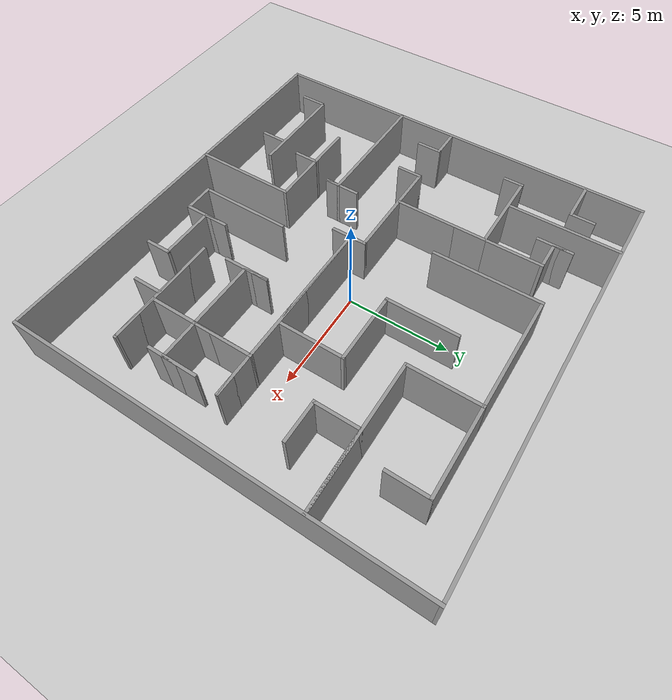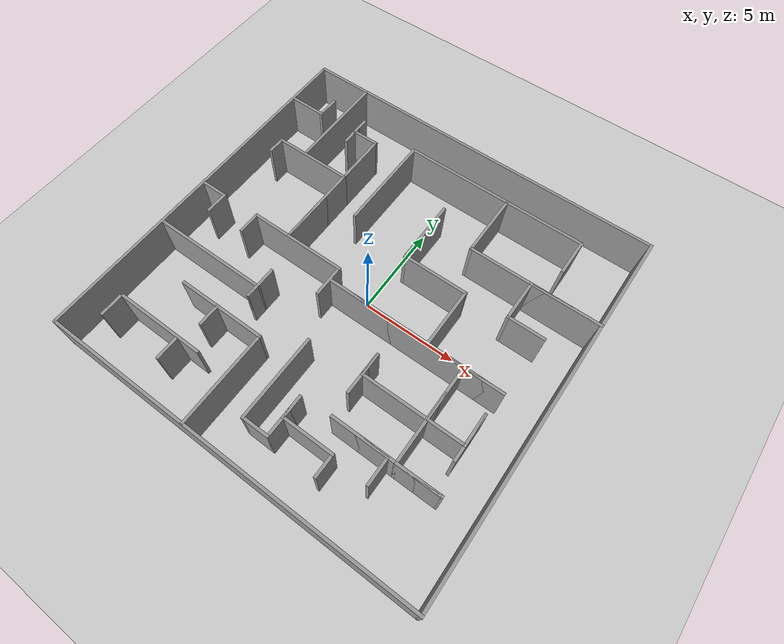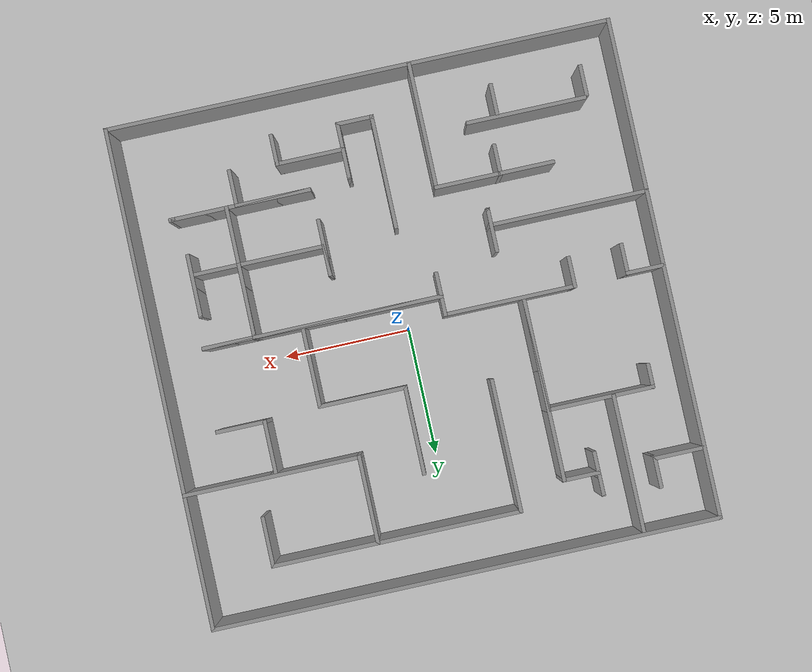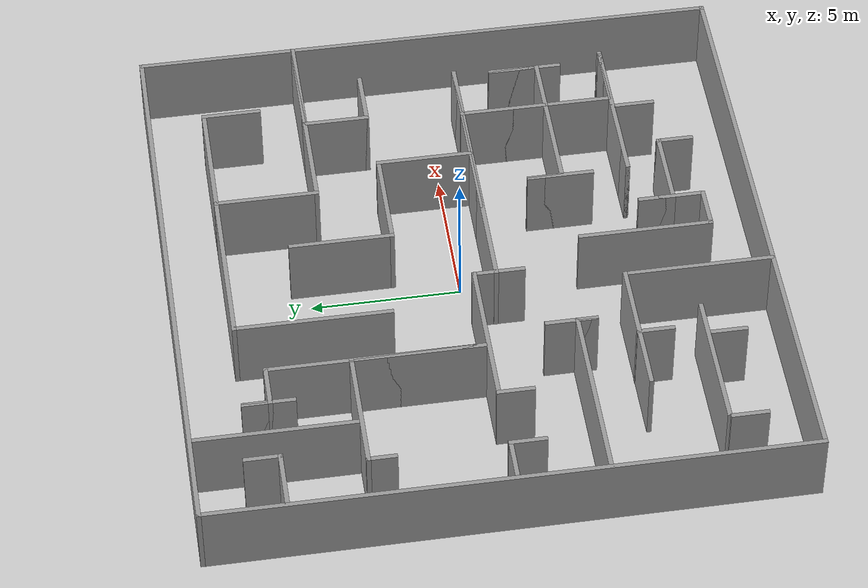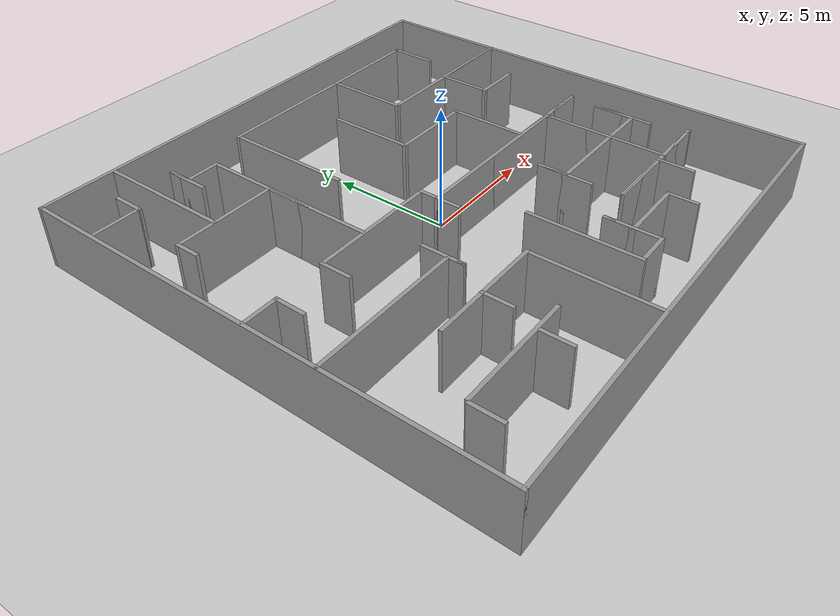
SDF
<sdf version="1.7">
 <world name="default">
  <light name="sun" type="directional">
   <pose>0 0 10 0 -0 0</pose>
   <diffuse>0.8 0.8 0.8 1</diffuse>
   <specular>0.2 0.2 0.2 1</specular>
   <attenuation>
    <range>1000</range>
    <constant>0.9</constant>
    <linear>0.01</linear>
    <quadratic>0.001</quadratic>
   </attenuation>
   <direction>-0.5 0.1 -0.9</direction>
   <spot><inner_angle>0</inner_angle><outer_angle>0</outer_angle><falloff>0</falloff></spot>
  </light>
  <model name="ground_plane">
   <static>1</static>
   <link name="link">
    <collision name="collision">
     <geometry><plane><normal>0 0 1</normal><size>100 100</size></plane></geometry>
     <surface>
      <contact><collide_bitmask>65535</collide_bitmask></contact>
      <friction><ode><mu>100</mu><mu2>50</mu2></ode></friction>
     </surface>
    </collision>
    <visual name="visual">
     <cast_shadows>0</cast_shadows>
     <geometry><plane><normal>0 0 1</normal><size>100 100</size></plane></geometry>
     <material>
      <script><uri>file://media/materials/scripts/gazebo.material</uri><name>Gazebo/Grey</name></script>
     </material>
    </visual>
   </link>
  </model>
  <gravity>0 0 -9.8</gravity>
  <magnetic_field>6e-06 2.3e-05 -4.2e-05</magnetic_field>
  <atmosphere type="adiabatic"/>
  <physics type="ode">
   <max_step_size>0.001</max_step_size>
   <real_time_factor>1</real_time_factor>
   <real_time_update_rate>1000</real_time_update_rate>
  </physics>
  <scene><ambient>0.4 0.4 0.4 1</ambient><background>0.7 0.7 0.7 1</background><shadows>1</shadows></scene>
  <spherical_coordinates>
   <surface_model>EARTH_WGS84</surface_model>
   <latitude_deg>0</latitude_deg>
   <longitude_deg>0</longitude_deg>
   <elevation>0</elevation>
   <heading_deg>0</heading_deg>
  </spherical_coordinates>
  <model name="maze_wei_20240820">
   <pose>-0.167936 -0.192088 0 0 -0 0</pose>
   <link name="Wall_12">
    <collision name="Wall_12_Collision">
     <geometry><box><size>1.25 0.15 2.5</size></box></geometry>
     <pose>0 0.1 1.25 0 -0 0</pose>
    </collision>
    <visual name="Wall_12_Visual">
     <pose>0 0.1 1.25 0 -0 0</pose>
     <geometry><box><size>1.25 0.15 2.5</size></box></geometry>
     <material>
      <script><uri>file://media/materials/scripts/gazebo.material</uri><name>Gazebo/Grey</name></script>
      <ambient>1 1 1 1</ambient>
     </material>
     <meta><layer>0</layer></meta>
    </visual>
    <pose>-8.37841 -7.71905 0 0 -0 1.5708</pose>
   </link>
   <link name="Wall_13">
    <collision name="Wall_13_Collision">
     <geometry><box><size>4.75 0.15 2.5</size></box></geometry>
     <pose>0 0.1 1.25 0 -0 0</pose>
    </collision>
    <visual name="Wall_13_Visual">
     <pose>0 0.1 1.25 0 -0 0</pose>
     <geometry><box><size>4.75 0.15 2.5</size></box></geometry>
     <material>
      <script><uri>file://media/materials/scripts/gazebo.material</uri><name>Gazebo/Grey</name></script>
      <ambient>1 1 1 1</ambient>
     </material>
     <meta><layer>0</layer></meta>
    </visual>
    <pose>-6.07841 -7.16905 0 0 -0 0</pose>
   </link>
   <link name="Wall_15">
    <collision name="Wall_15_Collision">
     <geometry><box><size>1.25 0.15 2.5</size></box></geometry>
     <pose>0 0.1 1.25 0 -0 0</pose>
    </collision>
    <visual name="Wall_15_Visual">
     <pose>0 0.1 1.25 0 -0 0</pose>
     <geometry><box><size>1.25 0.15 2.5</size></box></geometry>
     <material>
      <script><uri>file://media/materials/scripts/gazebo.material</uri><name>Gazebo/Grey</name></script>
      <ambient>1 1 1 1</ambient>
     </material>
     <meta><layer>0</layer></meta>
    </visual>
    <pose>-5.04841 -7.74905 0 0 -0 -1.5708</pose>
   </link>
   <link name="Wall_17">
    <collision name="Wall_17_Collision">
     <geometry><box><size>5 0.15 2.5</size></box></geometry>
     <pose>0 0 1.25 0 -0 0</pose>
    </collision>
    <visual name="Wall_17_Visual">
     <pose>0 0 1.25 0 -0 0</pose>
     <geometry><box><size>5 0.15 2.5</size></box></geometry>
     <material>
      <script><uri>file://media/materials/scripts/gazebo.material</uri><name>Gazebo/Grey</name></script>
      <ambient>1 1 1 1</ambient>
     </material>
     <meta><layer>0</layer></meta>
    </visual>
    <pose>-2.04333 -7.33547 0 0 -0 1.5708</pose>
   </link>
   <link name="Wall_18">
    <collision name="Wall_18_Collision">
     <geometry><box><size>4.75 0.15 2.5</size></box></geometry>
     <pose>0 0 1.25 0 -0 0</pose>
    </collision>
    <visual name="Wall_18_Visual">
     <pose>0 0 1.25 0 -0 0</pose>
     <geometry><box><size>4.75 0.15 2.5</size></box></geometry>
     <material>
      <script><uri>file://media/materials/scripts/gazebo.material</uri><name>Gazebo/Grey</name></script>
      <ambient>1 1 1 1</ambient>
     </material>
     <meta><layer>0</layer></meta>
    </visual>
    <pose>-4.34333 -4.90047 0 0 -0 3.14159</pose>
   </link>
   <link name="Wall_2">
    <collision name="Wall_2_Collision">
     <geometry><box><size>20 0.15 2.5</size></box></geometry>
     <pose>0 0 1.25 0 -0 0</pose>
    </collision>
    <visual name="Wall_2_Visual">
     <pose>0 0 1.25 0 -0 0</pose>
     <geometry><box><size>20 0.15 2.5</size></box></geometry>
     <material>
      <script><uri>file://media/materials/scripts/gazebo.material</uri><name>Gazebo/Grey</name></script>
      <ambient>1 1 1 1</ambient>
     </material>
     <meta><layer>0</layer></meta>
    </visual>
    <pose>0 -9.8 0 0 -0 0</pose>
   </link>
   <link name="Wall_20">
    <collision name="Wall_20_Collision">
     <geometry><box><size>1.25 0.15 2.5</size></box></geometry>
     <pose>0 0 1.25 0 -0 0</pose>
    </collision>
    <visual name="Wall_20_Visual">
     <pose>0 0 1.25 0 -0 0</pose>
     <geometry><box><size>1.25 0.15 2.5</size></box></geometry>
     <material>
      <script><uri>file://media/materials/scripts/gazebo.material</uri><name>Gazebo/Grey</name></script>
      <ambient>1 1 1 1</ambient>
     </material>
     <meta><layer>0</layer></meta>
    </visual>
    <pose>-4.57333 -5.44047 0 0 -0 -1.5708</pose>
   </link>
   <link name="Wall_22">
    <collision name="Wall_22_Collision">
     <geometry><box><size>6.25 0.15 2.5</size></box></geometry>
     <pose>0 0 1.25 0 -0 0</pose>
    </collision>
    <visual name="Wall_22_Visual">
     <pose>0 0 1.25 0 -0 0</pose>
     <geometry><box><size>6.25 0.15 2.5</size></box></geometry>
     <material>
      <script><uri>file://media/materials/scripts/gazebo.material</uri><name>Gazebo/Grey</name></script>
      <ambient>1 1 1 1</ambient>
     </material>
     <meta><layer>0</layer></meta>
    </visual>
    <pose>-6.84505 -3.03153 0 0 -0 0</pose>
   </link>
   <link name="Wall_23">
    <collision name="Wall_23_Collision">
     <geometry><box><size>0.75 0.15 2.5</size></box></geometry>
     <pose>0 0 1.25 0 -0 0</pose>
    </collision>
    <visual name="Wall_23_Visual">
     <pose>0 0 1.25 0 -0 0</pose>
     <geometry><box><size>0.75 0.15 2.5</size></box></geometry>
     <material>
      <script><uri>file://media/materials/scripts/gazebo.material</uri><name>Gazebo/Grey</name></script>
      <ambient>1 1 1 1</ambient>
     </material>
     <meta><layer>0</layer></meta>
    </visual>
    <pose>-3.79505 -3.33153 0 0 -0 -1.5708</pose>
   </link>
   <link name="Wall_24">
    <collision name="Wall_24_Collision">
     <geometry><box><size>1.75 0.15 2.5</size></box></geometry>
     <pose>0 0 1.25 0 -0 0</pose>
    </collision>
    <visual name="Wall_24_Visual">
     <pose>0 0 1.25 0 -0 0</pose>
     <geometry><box><size>1.75 0.15 2.5</size></box></geometry>
     <material>
      <script><uri>file://media/materials/scripts/gazebo.material</uri><name>Gazebo/Grey</name></script>
      <ambient>1 1 1 1</ambient>
     </material>
     <meta><layer>0</layer></meta>
    </visual>
    <pose>-3.79505 -2.83153 0 0 -0 1.5708</pose>
   </link>
   <link name="Wall_26">
    <collision name="Wall_26_Collision">
     <geometry><box><size>1.5 0.15 2.5</size></box></geometry>
     <pose>0 0 1.25 0 -0 0</pose>
    </collision>
    <visual name="Wall_26_Visual">
     <pose>0 0 1.25 0 -0 0</pose>
     <geometry><box><size>1.5 0.15 2.5</size></box></geometry>
     <material>
      <script><uri>file://media/materials/scripts/gazebo.material</uri><name>Gazebo/Grey</name></script>
      <ambient>1 1 1 1</ambient>
     </material>
     <meta><layer>0</layer></meta>
    </visual>
    <pose>-9.18964 -0.09624 0 0 -0 0</pose>
   </link>
   <link name="Wall_27">
    <collision name="Wall_27_Collision">
     <geometry><box><size>1.25 0.15 2.5</size></box></geometry>
     <pose>0 0 1.25 0 -0 0</pose>
    </collision>
    <visual name="Wall_27_Visual">
     <pose>0 0 1.25 0 -0 0</pose>
     <geometry><box><size>1.25 0.15 2.5</size></box></geometry>
     <material>
      <script><uri>file://media/materials/scripts/gazebo.material</uri><name>Gazebo/Grey</name></script>
      <ambient>1 1 1 1</ambient>
     </material>
     <meta><layer>0</layer></meta>
    </visual>
    <pose>-8.51464 -0.64624 0 0 -0 -1.5708</pose>
   </link>
   <link name="Wall_29">
    <collision name="Wall_29_Collision">
     <geometry><box><size>1.25 0.15 2.5</size></box></geometry>
     <pose>0 0 1.25 0 -0 0</pose>
    </collision>
    <visual name="Wall_29_Visual">
     <pose>0 0 1.25 0 -0 0</pose>
     <geometry><box><size>1.25 0.15 2.5</size></box></geometry>
     <material>
      <script><uri>file://media/materials/scripts/gazebo.material</uri><name>Gazebo/Grey</name></script>
      <ambient>1 1 1 1</ambient>
     </material>
     <meta><layer>0</layer></meta>
    </visual>
    <pose>-6.42746 -0.595643 0 0 -0 1.5708</pose>
   </link>
   <link name="Wall_3">
    <collision name="Wall_3_Collision">
     <geometry><box><size>19.75 0.15 2.5</size></box></geometry>
     <pose>0 0 1.25 0 -0 0</pose>
    </collision>
    <visual name="Wall_3_Visual">
     <pose>0 0 1.25 0 -0 0</pose>
     <geometry><box><size>19.75 0.15 2.5</size></box></geometry>
     <material>
      <script><uri>file://media/materials/scripts/gazebo.material</uri><name>Gazebo/Grey</name></script>
      <ambient>1 1 1 1</ambient>
     </material>
     <meta><layer>0</layer></meta>
    </visual>
    <pose>9.925 0 0 0 -0 1.5708</pose>
   </link>
   <link name="Wall_30">
    <collision name="Wall_30_Collision">
     <geometry><box><size>5.25 0.15 2.5</size></box></geometry>
     <pose>0 0 1.25 0 -0 0</pose>
    </collision>
    <visual name="Wall_30_Visual">
     <pose>0 0 1.25 0 -0 0</pose>
     <geometry><box><size>5.25 0.15 2.5</size></box></geometry>
     <material>
      <script><uri>file://media/materials/scripts/gazebo.material</uri><name>Gazebo/Grey</name></script>
      <ambient>1 1 1 1</ambient>
     </material>
     <meta><layer>0</layer></meta>
    </visual>
    <pose>-3.87746 -0.045643 0 0 -0 0</pose>
   </link>
   <link name="Wall_31">
    <collision name="Wall_31_Collision">
     <geometry><box><size>1.75 0.15 2.5</size></box></geometry>
     <pose>0 0 1.25 0 -0 0</pose>
    </collision>
    <visual name="Wall_31_Visual">
     <pose>0 0 1.25 0 -0 0</pose>
     <geometry><box><size>1.75 0.15 2.5</size></box></geometry>
     <material>
      <script><uri>file://media/materials/scripts/gazebo.material</uri><name>Gazebo/Grey</name></script>
      <ambient>1 1 1 1</ambient>
     </material>
     <meta><layer>0</layer></meta>
    </visual>
    <pose>-1.32746 -0.845643 0 0 -0 -1.5708</pose>
   </link>
   <link name="Wall_34">
    <collision name="Wall_34_Collision">
     <geometry><box><size>4.5 0.15 2.5</size></box></geometry>
     <pose>0 0 1.25 0 -0 0</pose>
    </collision>
    <visual name="Wall_34_Visual">
     <pose>0 0 1.25 0 -0 0</pose>
     <geometry><box><size>4.5 0.15 2.5</size></box></geometry>
     <material>
      <script><uri>file://media/materials/scripts/gazebo.material</uri><name>Gazebo/Grey</name></script>
      <ambient>1 1 1 1</ambient>
     </material>
     <meta><layer>0</layer></meta>
    </visual>
    <pose>-0.198634 -5.9289 0 0 -0 -1.5708</pose>
   </link>
   <link name="Wall_35">
    <collision name="Wall_35_Collision">
     <geometry><box><size>1.5 0.15 2.5</size></box></geometry>
     <pose>0 0 1.25 0 -0 0</pose>
    </collision>
    <visual name="Wall_35_Visual">
     <pose>0 0 1.25 0 -0 0</pose>
     <geometry><box><size>1.5 0.15 2.5</size></box></geometry>
     <material>
      <script><uri>file://media/materials/scripts/gazebo.material</uri><name>Gazebo/Grey</name></script>
      <ambient>1 1 1 1</ambient>
     </material>
     <meta><layer>0</layer></meta>
    </visual>
    <pose>0.476366 -8.1039 0 0 -0 0</pose>
   </link>
   <link name="Wall_36">
    <collision name="Wall_36_Collision">
     <geometry><box><size>2.25 0.15 2.5</size></box></geometry>
     <pose>0 0 1.25 0 -0 0</pose>
    </collision>
    <visual name="Wall_36_Visual">
     <pose>0 0 1.25 0 -0 0</pose>
     <geometry><box><size>2.25 0.15 2.5</size></box></geometry>
     <material>
      <script><uri>file://media/materials/scripts/gazebo.material</uri><name>Gazebo/Grey</name></script>
      <ambient>1 1 1 1</ambient>
     </material>
     <meta><layer>0</layer></meta>
    </visual>
    <pose>1.15137 -7.0539 0 0 -0 1.5708</pose>
   </link>
   <link name="Wall_37">
    <collision name="Wall_37_Collision">
     <geometry><box><size>1.25 0.15 2.5</size></box></geometry>
     <pose>0 0 1.25 0 -0 0</pose>
    </collision>
    <visual name="Wall_37_Visual">
     <pose>0 0 1.25 0 -0 0</pose>
     <geometry><box><size>1.25 0.15 2.5</size></box></geometry>
     <material>
      <script><uri>file://media/materials/scripts/gazebo.material</uri><name>Gazebo/Grey</name></script>
      <ambient>1 1 1 1</ambient>
     </material>
     <meta><layer>0</layer></meta>
    </visual>
    <pose>1.15137 -6.5539 0 0 -0 -1.5708</pose>
   </link>
   <link name="Wall_38">
    <collision name="Wall_38_Collision">
     <geometry><box><size>2.75 0.15 2.5</size></box></geometry>
     <pose>0 0 1.25 0 -0 0</pose>
    </collision>
    <visual name="Wall_38_Visual">
     <pose>0 0 1.25 0 -0 0</pose>
     <geometry><box><size>2.75 0.15 2.5</size></box></geometry>
     <material>
      <script><uri>file://media/materials/scripts/gazebo.material</uri><name>Gazebo/Grey</name></script>
      <ambient>1 1 1 1</ambient>
     </material>
     <meta><layer>0</layer></meta>
    </visual>
    <pose>2.45137 -7.1039 0 0 -0 0</pose>
   </link>
   <link name="Wall_39">
    <collision name="Wall_39_Collision">
     <geometry><box><size>1.25 0.15 2.5</size></box></geometry>
     <pose>0 0 1.25 0 -0 0</pose>
    </collision>
    <visual name="Wall_39_Visual">
     <pose>0 0 1.25 0 -0 0</pose>
     <geometry><box><size>1.25 0.15 2.5</size></box></geometry>
     <material>
      <script><uri>file://media/materials/scripts/gazebo.material</uri><name>Gazebo/Grey</name></script>
      <ambient>1 1 1 1</ambient>
     </material>
     <meta><layer>0</layer></meta>
    </visual>
    <pose>3.75137 -7.6539 0 0 -0 -1.5708</pose>
   </link>
   <link name="Wall_4">
    <collision name="Wall_4_Collision">
     <geometry><box><size>20 0.15 2.5</size></box></geometry>
     <pose>0 0 1.25 0 -0 0</pose>
    </collision>
    <visual name="Wall_4_Visual">
     <pose>0 0 1.25 0 -0 0</pose>
     <geometry><box><size>20 0.15 2.5</size></box></geometry>
     <material>
      <script><uri>file://media/materials/scripts/gazebo.material</uri><name>Gazebo/Grey</name></script>
      <ambient>1 1 1 1</ambient>
     </material>
     <meta><layer>0</layer></meta>
    </visual>
    <pose>0 9.8 0 0 -0 3.14159</pose>
   </link>
   <link name="Wall_42">
    <collision name="Wall_42_Collision">
     <geometry><box><size>1.5 0.15 2.5</size></box></geometry>
     <pose>0 0 1.25 0 -0 0</pose>
    </collision>
    <visual name="Wall_42_Visual">
     <pose>0 0 1.25 0 -0 0</pose>
     <geometry><box><size>1.5 0.15 2.5</size></box></geometry>
     <material>
      <script><uri>file://media/materials/scripts/gazebo.material</uri><name>Gazebo/Grey</name></script>
      <ambient>1 1 1 1</ambient>
     </material>
     <meta><layer>0</layer></meta>
    </visual>
    <pose>5.61419 -6.53843 0 0 -0 1.5708</pose>
   </link>
   <link name="Wall_43">
    <collision name="Wall_43_Collision">
     <geometry><box><size>3 0.15 2.5</size></box></geometry>
     <pose>0 0 1.25 0 -0 0</pose>
    </collision>
    <visual name="Wall_43_Visual">
     <pose>0 0 1.25 0 -0 0</pose>
     <geometry><box><size>3 0.15 2.5</size></box></geometry>
     <material>
      <script><uri>file://media/materials/scripts/gazebo.material</uri><name>Gazebo/Grey</name></script>
      <ambient>1 1 1 1</ambient>
     </material>
     <meta><layer>0</layer></meta>
    </visual>
    <pose>4.18919 -5.86343 0 0 -0 3.14159</pose>
   </link>
   <link name="Wall_44">
    <collision name="Wall_44_Collision">
     <geometry><box><size>5.5 0.15 2.5</size></box></geometry>
     <pose>0 0 1.25 0 -0 0</pose>
    </collision>
    <visual name="Wall_44_Visual">
     <pose>0 0 1.25 0 -0 0</pose>
     <geometry><box><size>5.5 0.15 2.5</size></box></geometry>
     <material>
      <script><uri>file://media/materials/scripts/gazebo.material</uri><name>Gazebo/Grey</name></script>
      <ambient>1 1 1 1</ambient>
     </material>
     <meta><layer>0</layer></meta>
    </visual>
    <pose>5.43919 -5.86343 0 0 -0 0</pose>
   </link>
   <link name="Wall_45">
    <collision name="Wall_45_Collision">
     <geometry><box><size>2.25 0.15 2.5</size></box></geometry>
     <pose>0 0 1.25 0 -0 0</pose>
    </collision>
    <visual name="Wall_45_Visual">
     <pose>0 0 1.25 0 -0 0</pose>
     <geometry><box><size>2.25 0.15 2.5</size></box></geometry>
     <material>
      <script><uri>file://media/materials/scripts/gazebo.material</uri><name>Gazebo/Grey</name></script>
      <ambient>1 1 1 1</ambient>
     </material>
     <meta><layer>0</layer></meta>
    </visual>
    <pose>7.06419 -5.86343 0 0 -0 3.14159</pose>
   </link>
   <link name="Wall_46">
    <collision name="Wall_46_Collision">
     <geometry><box><size>5.25 0.15 2.5</size></box></geometry>
     <pose>0 0 1.25 0 -0 0</pose>
    </collision>
    <visual name="Wall_46_Visual">
     <pose>0 0 1.25 0 -0 0</pose>
     <geometry><box><size>5.25 0.15 2.5</size></box></geometry>
     <material>
      <script><uri>file://media/materials/scripts/gazebo.material</uri><name>Gazebo/Grey</name></script>
      <ambient>1 1 1 1</ambient>
     </material>
     <meta><layer>0</layer></meta>
    </visual>
    <pose>6.01419 -3.31343 0 0 -0 1.5708</pose>
   </link>
   <link name="Wall_47">
    <collision name="Wall_47_Collision">
     <geometry><box><size>7.5 0.15 2.5</size></box></geometry>
     <pose>0 0 1.25 0 -0 0</pose>
    </collision>
    <visual name="Wall_47_Visual">
     <pose>0 0 1.25 0 -0 0</pose>
     <geometry><box><size>7.5 0.15 2.5</size></box></geometry>
     <material>
      <script><uri>file://media/materials/scripts/gazebo.material</uri><name>Gazebo/Grey</name></script>
      <ambient>1 1 1 1</ambient>
     </material>
     <meta><layer>0</layer></meta>
    </visual>
    <pose>2.33919 -0.763433 0 0 -0 3.14159</pose>
   </link>
   <link name="Wall_48">
    <collision name="Wall_48_Collision">
     <geometry><box><size>9.5 0.15 2.5</size></box></geometry>
     <pose>0 0 1.25 0 -0 0</pose>
    </collision>
    <visual name="Wall_48_Visual">
     <pose>0 0 1.25 0 -0 0</pose>
     <geometry><box><size>9.5 0.15 2.5</size></box></geometry>
     <material>
      <script><uri>file://media/materials/scripts/gazebo.material</uri><name>Gazebo/Grey</name></script>
      <ambient>1 1 1 1</ambient>
     </material>
     <meta><layer>0</layer></meta>
    </visual>
    <pose>3.33919 -0.763433 0 0 -0 0</pose>
   </link>
   <link name="Wall_49">
    <collision name="Wall_49_Collision">
     <geometry><box><size>2.15 0.15 2.5</size></box></geometry>
     <pose>0 0 1.25 0 -0 0</pose>
    </collision>
    <visual name="Wall_49_Visual">
     <pose>0 0 1.25 0 -0 0</pose>
     <geometry><box><size>2.15 0.15 2.5</size></box></geometry>
     <material>
      <script><uri>file://media/materials/scripts/gazebo.material</uri><name>Gazebo/Grey</name></script>
      <ambient>1 1 1 1</ambient>
     </material>
     <meta><layer>0</layer></meta>
    </visual>
    <pose>7.01419 -0.763433 0 0 -0 -3.14159</pose>
   </link>
   <link name="Wall_5">
    <collision name="Wall_5_Collision">
     <geometry><box><size>19.75 0.15 2.5</size></box></geometry>
     <pose>0 0 1.25 0 -0 0</pose>
    </collision>
    <visual name="Wall_5_Visual">
     <pose>0 0 1.25 0 -0 0</pose>
     <geometry><box><size>19.75 0.15 2.5</size></box></geometry>
     <material>
      <script><uri>file://media/materials/scripts/gazebo.material</uri><name>Gazebo/Grey</name></script>
      <ambient>1 1 1 1</ambient>
     </material>
     <meta><layer>0</layer></meta>
    </visual>
    <pose>-9.925 0 0 0 -0 -1.5708</pose>
   </link>
   <link name="Wall_50">
    <collision name="Wall_50_Collision">
     <geometry><box><size>3 0.15 2.5</size></box></geometry>
     <pose>0 0 1.25 0 -0 0</pose>
    </collision>
    <visual name="Wall_50_Visual">
     <pose>0 0 1.25 0 -0 0</pose>
     <geometry><box><size>3 0.15 2.5</size></box></geometry>
     <material>
      <script><uri>file://media/materials/scripts/gazebo.material</uri><name>Gazebo/Grey</name></script>
      <ambient>1 1 1 1</ambient>
     </material>
     <meta><layer>0</layer></meta>
    </visual>
    <pose>6.01419 -2.18843 0 0 -0 -1.5708</pose>
   </link>
   <link name="Wall_51">
    <collision name="Wall_51_Collision">
     <geometry><box><size>3.5 0.15 2.5</size></box></geometry>
     <pose>0 0 1.25 0 -0 0</pose>
    </collision>
    <visual name="Wall_51_Visual">
     <pose>0 0 1.25 0 -0 0</pose>
     <geometry><box><size>3.5 0.15 2.5</size></box></geometry>
     <material>
      <script><uri>file://media/materials/scripts/gazebo.material</uri><name>Gazebo/Grey</name></script>
      <ambient>1 1 1 1</ambient>
     </material>
     <meta><layer>0</layer></meta>
    </visual>
    <pose>4.33919 -3.61343 0 0 -0 3.14159</pose>
   </link>
   <link name="Wall_52">
    <collision name="Wall_52_Collision">
     <geometry><box><size>1.25 0.15 2.5</size></box></geometry>
     <pose>0 0 1.25 0 -0 0</pose>
    </collision>
    <visual name="Wall_52_Visual">
     <pose>0 0 1.25 0 -0 0</pose>
     <geometry><box><size>1.25 0.15 2.5</size></box></geometry>
     <material>
      <script><uri>file://media/materials/scripts/gazebo.material</uri><name>Gazebo/Grey</name></script>
      <ambient>1 1 1 1</ambient>
     </material>
     <meta><layer>0</layer></meta>
    </visual>
    <pose>2.66419 -3.06343 0 0 -0 1.5708</pose>
   </link>
   <link name="Wall_53">
    <collision name="Wall_53_Collision">
     <geometry><box><size>2.25 0.15 2.5</size></box></geometry>
     <pose>0 0 1.25 0 -0 0</pose>
    </collision>
    <visual name="Wall_53_Visual">
     <pose>0 0 1.25 0 -0 0</pose>
     <geometry><box><size>2.25 0.15 2.5</size></box></geometry>
     <material>
      <script><uri>file://media/materials/scripts/gazebo.material</uri><name>Gazebo/Grey</name></script>
      <ambient>1 1 1 1</ambient>
     </material>
     <meta><layer>0</layer></meta>
    </visual>
    <pose>2.66419 -3.56343 0 0 -0 -1.5708</pose>
   </link>
   <link name="Wall_55">
    <collision name="Wall_55_Collision">
     <geometry><box><size>2 0.15 2.5</size></box></geometry>
     <pose>0 0 1.25 0 -0 0</pose>
    </collision>
    <visual name="Wall_55_Visual">
     <pose>0 0 1.25 0 -0 0</pose>
     <geometry><box><size>2 0.15 2.5</size></box></geometry>
     <material>
      <script><uri>file://media/materials/scripts/gazebo.material</uri><name>Gazebo/Grey</name></script>
      <ambient>1 1 1 1</ambient>
     </material>
     <meta><layer>0</layer></meta>
    </visual>
    <pose>6.93919 -3.61343 0 0 -0 0</pose>
   </link>
   <link name="Wall_56">
    <collision name="Wall_56_Collision">
     <geometry><box><size>1.75 0.15 2.5</size></box></geometry>
     <pose>0 0 1.25 0 -0 0</pose>
    </collision>
    <visual name="Wall_56_Visual">
     <pose>0 0 1.25 0 -0 0</pose>
     <geometry><box><size>1.75 0.15 2.5</size></box></geometry>
     <material>
      <script><uri>file://media/materials/scripts/gazebo.material</uri><name>Gazebo/Grey</name></script>
      <ambient>1 1 1 1</ambient>
     </material>
     <meta><layer>0</layer></meta>
    </visual>
    <pose>7.86419 -2.81343 0 0 -0 1.5708</pose>
   </link>
   <link name="Wall_57">
    <collision name="Wall_57_Collision">
     <geometry><box><size>2.5 0.15 2.5</size></box></geometry>
     <pose>0 0 1.25 0 -0 0</pose>
    </collision>
    <visual name="Wall_57_Visual">
     <pose>0 0 1.25 0 -0 0</pose>
     <geometry><box><size>2.5 0.15 2.5</size></box></geometry>
     <material>
      <script><uri>file://media/materials/scripts/gazebo.material</uri><name>Gazebo/Grey</name></script>
      <ambient>1 1 1 1</ambient>
     </material>
     <meta><layer>0</layer></meta>
    </visual>
    <pose>7.86419 -3.18843 0 0 -0 -1.5708</pose>
   </link>
   <link name="Wall_59">
    <collision name="Wall_59_Collision">
     <geometry><box><size>3.25 0.15 2.5</size></box></geometry>
     <pose>0 0 1.25 0 -0 0</pose>
    </collision>
    <visual name="Wall_59_Visual">
     <pose>0 0 1.25 0 -0 0</pose>
     <geometry><box><size>3.25 0.15 2.5</size></box></geometry>
     <material>
      <script><uri>file://media/materials/scripts/gazebo.material</uri><name>Gazebo/Grey</name></script>
      <ambient>1 1 1 1</ambient>
     </material>
     <meta><layer>0</layer></meta>
    </visual>
    <pose>4.13042 0.813829 0 0 -0 1.5708</pose>
   </link>
   <link name="Wall_60">
    <collision name="Wall_60_Collision">
     <geometry><box><size>3.5 0.15 2.5</size></box></geometry>
     <pose>0 0 1.25 0 -0 0</pose>
    </collision>
    <visual name="Wall_60_Visual">
     <pose>0 0 1.25 0 -0 0</pose>
     <geometry><box><size>3.5 0.15 2.5</size></box></geometry>
     <material>
      <script><uri>file://media/materials/scripts/gazebo.material</uri><name>Gazebo/Grey</name></script>
      <ambient>1 1 1 1</ambient>
     </material>
     <meta><layer>0</layer></meta>
    </visual>
    <pose>2.45542 2.36383 0 0 -0 3.14159</pose>
   </link>
   <link name="Wall_62">
    <collision name="Wall_62_Collision">
     <geometry><box><size>3.5 0.15 2.5</size></box></geometry>
     <pose>0 0 1.25 0 -0 0</pose>
    </collision>
    <visual name="Wall_62_Visual">
     <pose>0 0 1.25 0 -0 0</pose>
     <geometry><box><size>3.5 0.15 2.5</size></box></geometry>
     <material>
      <script><uri>file://media/materials/scripts/gazebo.material</uri><name>Gazebo/Grey</name></script>
      <ambient>1 1 1 1</ambient>
     </material>
     <meta><layer>0</layer></meta>
    </visual>
    <pose>0.780424 4.03883 0 0 -0 1.5708</pose>
   </link>
   <link name="Wall_66">
    <collision name="Wall_66_Collision">
     <geometry><box><size>2 0.15 2.5</size></box></geometry>
     <pose>0 0 1.25 0 -0 0</pose>
    </collision>
    <visual name="Wall_66_Visual">
     <pose>0 0 1.25 0 -0 0</pose>
     <geometry><box><size>2 0.15 2.5</size></box></geometry>
     <material>
      <script><uri>file://media/materials/scripts/gazebo.material</uri><name>Gazebo/Grey</name></script>
      <ambient>1 1 1 1</ambient>
     </material>
     <meta><layer>0</layer></meta>
    </visual>
    <pose>7.24478 2.47808 0 0 -0 3.14159</pose>
   </link>
   <link name="Wall_67">
    <collision name="Wall_67_Collision">
     <geometry><box><size>2.25 0.15 2.5</size></box></geometry>
     <pose>0 0 1.25 0 -0 0</pose>
    </collision>
    <visual name="Wall_67_Visual">
     <pose>0 0 1.25 0 -0 0</pose>
     <geometry><box><size>2.25 0.15 2.5</size></box></geometry>
     <material>
      <script><uri>file://media/materials/scripts/gazebo.material</uri><name>Gazebo/Grey</name></script>
      <ambient>1 1 1 1</ambient>
     </material>
     <meta><layer>0</layer></meta>
    </visual>
    <pose>6.31978 3.52808 0 0 -0 1.5708</pose>
   </link>
   <link name="Wall_68">
    <collision name="Wall_68_Collision">
     <geometry><box><size>3.75 0.15 2.5</size></box></geometry>
     <pose>0 0 1.25 0 -0 0</pose>
    </collision>
    <visual name="Wall_68_Visual">
     <pose>0 0 1.25 0 -0 0</pose>
     <geometry><box><size>3.75 0.15 2.5</size></box></geometry>
     <material>
      <script><uri>file://media/materials/scripts/gazebo.material</uri><name>Gazebo/Grey</name></script>
      <ambient>1 1 1 1</ambient>
     </material>
     <meta><layer>0</layer></meta>
    </visual>
    <pose>8.11978 4.57808 0 0 -0 0</pose>
   </link>
   <link name="Wall_69">
    <collision name="Wall_69_Collision">
     <geometry><box><size>7 0.15 2.5</size></box></geometry>
     <pose>0 0 1.25 0 -0 0</pose>
    </collision>
    <visual name="Wall_69_Visual">
     <pose>0 0 1.25 0 -0 0</pose>
     <geometry><box><size>7 0.15 2.5</size></box></geometry>
     <material>
      <script><uri>file://media/materials/scripts/gazebo.material</uri><name>Gazebo/Grey</name></script>
      <ambient>1 1 1 1</ambient>
     </material>
     <meta><layer>0</layer></meta>
    </visual>
    <pose>6.49478 4.57808 0 0 -0 3.14159</pose>
   </link>
   <link name="Wall_70">
    <collision name="Wall_70_Collision">
     <geometry><box><size>3.5 0.15 2.5</size></box></geometry>
     <pose>0 0 1.25 0 -0 0</pose>
    </collision>
    <visual name="Wall_70_Visual">
     <pose>0 0 1.25 0 -0 0</pose>
     <geometry><box><size>3.5 0.15 2.5</size></box></geometry>
     <material>
      <script><uri>file://media/materials/scripts/gazebo.material</uri><name>Gazebo/Grey</name></script>
      <ambient>1 1 1 1</ambient>
     </material>
     <meta><layer>0</layer></meta>
    </visual>
    <pose>3.06978 6.25308 0 0 -0 1.5708</pose>
   </link>
   <link name="Wall_71">
    <collision name="Wall_71_Collision">
     <geometry><box><size>4.25 0.15 2.5</size></box></geometry>
     <pose>0 0 1.25 0 -0 0</pose>
    </collision>
    <visual name="Wall_71_Visual">
     <pose>0 0 1.25 0 -0 0</pose>
     <geometry><box><size>4.25 0.15 2.5</size></box></geometry>
     <material>
      <script><uri>file://media/materials/scripts/gazebo.material</uri><name>Gazebo/Grey</name></script>
      <ambient>1 1 1 1</ambient>
     </material>
     <meta><layer>0</layer></meta>
    </visual>
    <pose>5.11978 7.92808 0 0 -0 0</pose>
   </link>
   <link name="Wall_73">
    <collision name="Wall_73_Collision">
     <geometry><box><size>2 0.15 2.5</size></box></geometry>
     <pose>0 0 1.25 0 -0 0</pose>
    </collision>
    <visual name="Wall_73_Visual">
     <pose>0 0 1.25 0 -0 0</pose>
     <geometry><box><size>2 0.15 2.5</size></box></geometry>
     <material>
      <script><uri>file://media/materials/scripts/gazebo.material</uri><name>Gazebo/Grey</name></script>
      <ambient>1 1 1 1</ambient>
     </material>
     <meta><layer>0</layer></meta>
    </visual>
    <pose>7.16978 7.00308 0 0 -0 -1.5708</pose>
   </link>
   <link name="Wall_75">
    <collision name="Wall_75_Collision">
     <geometry><box><size>5.75 0.15 2.5</size></box></geometry>
     <pose>0 0 1.25 0 -0 0</pose>
    </collision>
    <visual name="Wall_75_Visual">
     <pose>0 0 1.25 0 -0 0</pose>
     <geometry><box><size>5.75 0.15 2.5</size></box></geometry>
     <material>
      <script><uri>file://media/materials/scripts/gazebo.material</uri><name>Gazebo/Grey</name></script>
      <ambient>1 1 1 1</ambient>
     </material>
     <meta><layer>0</layer></meta>
    </visual>
    <pose>0.269776 7.92808 0 0 -0 3.14159</pose>
   </link>
   <link name="Wall_76">
    <collision name="Wall_76_Collision">
     <geometry><box><size>5.25 0.15 2.5</size></box></geometry>
     <pose>0 0 1.25 0 -0 0</pose>
    </collision>
    <visual name="Wall_76_Visual">
     <pose>0 0 1.25 0 -0 0</pose>
     <geometry><box><size>5.25 0.15 2.5</size></box></geometry>
     <material>
      <script><uri>file://media/materials/scripts/gazebo.material</uri><name>Gazebo/Grey</name></script>
      <ambient>1 1 1 1</ambient>
     </material>
     <meta><layer>0</layer></meta>
    </visual>
    <pose>-2.53022 5.37808 0 0 -0 -1.5708</pose>
   </link>
   <link name="Wall_78">
    <collision name="Wall_78_Collision">
     <geometry><box><size>2 0.15 2.5</size></box></geometry>
     <pose>0 0 1.25 0 -0 0</pose>
    </collision>
    <visual name="Wall_78_Visual">
     <pose>0 0 1.25 0 -0 0</pose>
     <geometry><box><size>2 0.15 2.5</size></box></geometry>
     <material>
      <script><uri>file://media/materials/scripts/gazebo.material</uri><name>Gazebo/Grey</name></script>
      <ambient>1 1 1 1</ambient>
     </material>
     <meta><layer>0</layer></meta>
    </visual>
    <pose>-8.90084 7.05794 0 0 -0 0</pose>
   </link>
   <link name="Wall_79">
    <collision name="Wall_79_Collision">
     <geometry><box><size>1.25 0.15 2.5</size></box></geometry>
     <pose>0 0 1.25 0 -0 0</pose>
    </collision>
    <visual name="Wall_79_Visual">
     <pose>0 0 1.25 0 -0 0</pose>
     <geometry><box><size>1.25 0.15 2.5</size></box></geometry>
     <material>
      <script><uri>file://media/materials/scripts/gazebo.material</uri><name>Gazebo/Grey</name></script>
      <ambient>1 1 1 1</ambient>
     </material>
     <meta><layer>0</layer></meta>
    </visual>
    <pose>-7.97584 7.60794 0 0 -0 1.5708</pose>
   </link>
   <link name="Wall_81">
    <collision name="Wall_81_Collision">
     <geometry><box><size>4.25 0.15 2.5</size></box></geometry>
     <pose>0 0 1.25 0 -0 0</pose>
    </collision>
    <visual name="Wall_81_Visual">
     <pose>0 0 1.25 0 -0 0</pose>
     <geometry><box><size>4.25 0.15 2.5</size></box></geometry>
     <material>
      <script><uri>file://media/materials/scripts/gazebo.material</uri><name>Gazebo/Grey</name></script>
      <ambient>1 1 1 1</ambient>
     </material>
     <meta><layer>0</layer></meta>
    </visual>
    <pose>-6.45739 4.37479 0 0 -0 0</pose>
   </link>
   <link name="Wall_82">
    <collision name="Wall_82_Collision">
     <geometry><box><size>4.5 0.15 2.5</size></box></geometry>
     <pose>0 0 1.25 0 -0 0</pose>
    </collision>
    <visual name="Wall_82_Visual">
     <pose>0 0 1.25 0 -0 0</pose>
     <geometry><box><size>4.5 0.15 2.5</size></box></geometry>
     <material>
      <script><uri>file://media/materials/scripts/gazebo.material</uri><name>Gazebo/Grey</name></script>
      <ambient>1 1 1 1</ambient>
     </material>
     <meta><layer>0</layer></meta>
    </visual>
    <pose>-4.40739 2.19979 0 0 -0 -1.5708</pose>
   </link>
   <link name="Wall_83">
    <collision name="Wall_83_Collision">
     <geometry><box><size>7.25 0.15 2.5</size></box></geometry>
     <pose>0 0 1.25 0 -0 0</pose>
    </collision>
    <visual name="Wall_83_Visual">
     <pose>0 0 1.25 0 -0 0</pose>
     <geometry><box><size>7.25 0.15 2.5</size></box></geometry>
     <material>
      <script><uri>file://media/materials/scripts/gazebo.material</uri><name>Gazebo/Grey</name></script>
      <ambient>1 1 1 1</ambient>
     </material>
     <meta><layer>0</layer></meta>
    </visual>
    <pose>-4.40739 3.57479 0 0 -0 1.5708</pose>
   </link>
   <link name="Wall_84">
    <collision name="Wall_84_Collision">
     <geometry><box><size>1.5 0.15 2.5</size></box></geometry>
     <pose>0 0 1.25 0 -0 0</pose>
    </collision>
    <visual name="Wall_84_Visual">
     <pose>0 0 1.25 0 -0 0</pose>
     <geometry><box><size>1.5 0.15 2.5</size></box></geometry>
     <material>
      <script><uri>file://media/materials/scripts/gazebo.material</uri><name>Gazebo/Grey</name></script>
      <ambient>1 1 1 1</ambient>
     </material>
     <meta><layer>0</layer></meta>
    </visual>
    <pose>-5.08239 7.12479 0 0 -0 3.14159</pose>
   </link>
   <link name="Wall_85">
    <collision name="Wall_85_Collision">
     <geometry><box><size>1 0.15 2.5</size></box></geometry>
     <pose>0 0 1.25 0 -0 0</pose>
    </collision>
    <visual name="Wall_85_Visual">
     <pose>0 0 1.25 0 -0 0</pose>
     <geometry><box><size>1 0.15 2.5</size></box></geometry>
     <material>
      <script><uri>file://media/materials/scripts/gazebo.material</uri><name>Gazebo/Grey</name></script>
      <ambient>1 1 1 1</ambient>
     </material>
     <meta><layer>0</layer></meta>
    </visual>
    <pose>-5.75739 7.54979 0 0 -0 1.5708</pose>
   </link>
   <link name="Wall_86">
    <collision name="Wall_86_Collision">
     <geometry><box><size>1.75 0.15 2.5</size></box></geometry>
     <pose>0 0 1.25 0 -0 0</pose>
    </collision>
    <visual name="Wall_86_Visual">
     <pose>0 0 1.25 0 -0 0</pose>
     <geometry><box><size>1.75 0.15 2.5</size></box></geometry>
     <material>
      <script><uri>file://media/materials/scripts/gazebo.material</uri><name>Gazebo/Grey</name></script>
      <ambient>1 1 1 1</ambient>
     </material>
     <meta><layer>0</layer></meta>
    </visual>
    <pose>-5.75739 7.17479 0 0 -0 -1.5708</pose>
   </link>
   <link name="Wall_89">
    <collision name="Wall_89_Collision">
     <geometry><box><size>5.5 0.15 2.5</size></box></geometry>
     <pose>0 0 1.25 0 -0 0</pose>
    </collision>
    <visual name="Wall_89_Visual">
     <pose>0 0 1.25 0 -0 0</pose>
     <geometry><box><size>5.5 0.15 2.5</size></box></geometry>
     <material>
      <script><uri>file://media/materials/scripts/gazebo.material</uri><name>Gazebo/Grey</name></script>
      <ambient>1 1 1 1</ambient>
     </material>
     <meta><layer>0</layer></meta>
    </visual>
    <pose>-6.95764 7.07292 0 0 -0 1.5708</pose>
   </link>
   <link name="Wall_91">
    <collision name="Wall_91_Collision">
     <geometry><box><size>1 0.15 2.5</size></box></geometry>
     <pose>0 0 1.25 0 -0 0</pose>
    </collision>
    <visual name="Wall_91_Visual">
     <pose>0 0 1.25 0 -0 0</pose>
     <geometry><box><size>1 0.15 2.5</size></box></geometry>
     <material>
      <script><uri>file://media/materials/scripts/gazebo.material</uri><name>Gazebo/Grey</name></script>
      <ambient>1 1 1 1</ambient>
     </material>
     <meta><layer>0</layer></meta>
    </visual>
    <pose>-8.50739 3.94979 0 0 -0 -1.5708</pose>
   </link>
   <link name="Wall_93">
    <collision name="Wall_93_Collision">
     <geometry><box><size>0.25 0.15 2.5</size></box></geometry>
     <pose>0 0 1.25 0 -0 0</pose>
    </collision>
    <visual name="Wall_93_Visual">
     <pose>0 0 1.25 0 -0 0</pose>
     <geometry><box><size>0.25 0.15 2.5</size></box></geometry>
     <material>
      <script><uri>file://media/materials/scripts/gazebo.material</uri><name>Gazebo/Grey</name></script>
      <ambient>1 1 1 1</ambient>
     </material>
     <meta><layer>0</layer></meta>
    </visual>
    <pose>8.16419 -5.86343 0 0 -0 0</pose>
   </link>
   <static>1</static>
  </model>
 </world>
</sdf>
